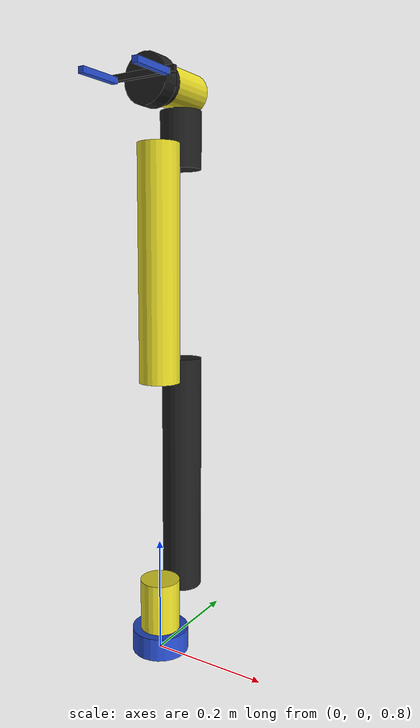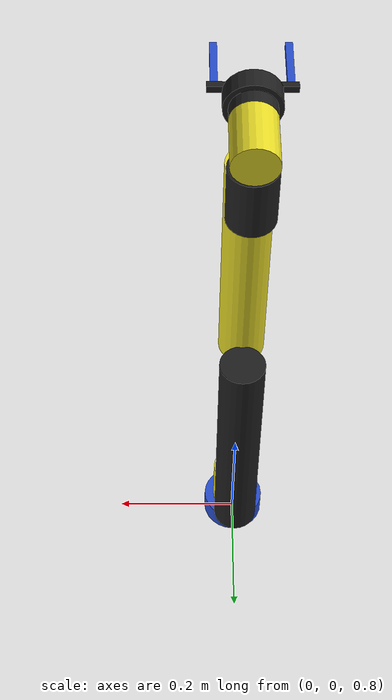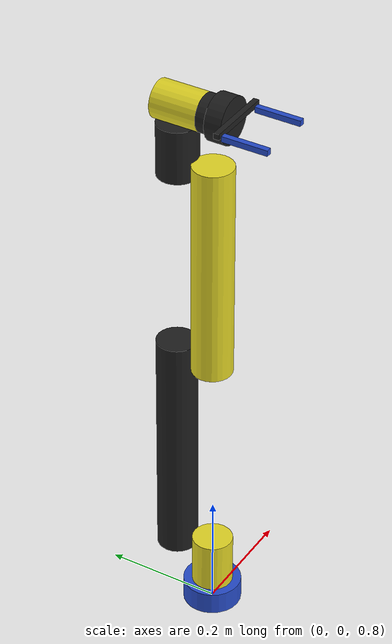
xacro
<?xml version = "1.0"?>

<robot name="custom_robot" xmlns:xacro="http://www.ros.org/wiki/xacro">

    <xacro:include filename="$(find custom_robot_description)/urdf/link_joint.xacro"/>
    <xacro:include filename="$(find custom_robot_description)/urdf/custom_gripper.xacro"/>
    <xacro:include filename="$(find custom_robot_description)/urdf/6_axis_robot_gazebo.xacro"/>

    <link name="world" >
    </link>

    <!-- Create Base Link using xacro -->
    <xacro:cobot_link_cylinder name="base_link" origin_xyz="0.0 0.0 0.02" origin_rpy="0.0 0.0 0.0"
                            radius="0.05" length="0.04" mass="4" i_xx="0.003033" i_xy="0" i_xz="0"
                            i_yy="0.003033" i_yz="0" i_zz="0.005"/>

    <joint name="fixed" type="fixed">
        <parent link="world"/>
        <child link="base_link"/>
        <origin xyz="0 0.0 0.8" rpy="0 0 0"/>
    </joint>

    <!-- Create Link 1 using xacro-->
    <xacro:cobot_link_cylinder name="link_1" origin_xyz="0.0 0.0 0.045" origin_rpy="0.0 0.0 0.0"
                            radius="0.035" length="0.09" mass="3.7" i_xx="0.003630625" i_xy="0" i_xz="0"
                            i_yy="0.003630625" i_yz="0" i_zz="0.00226625" />

    <!-- Create the joint that connects Base Link and Link 1 using xacro-->
    <xacro:cobot_joint name="base_link__link_1" type="revolute" parent="base_link" child="link_1"
                            axis="0 0 1" limit_l="-3.14159" limit_u="3.14159" limit_v="0.5" limit_e="1000.0"
                            origin_xyz="0 0 0.04" origin_rpy="0 0 0" />

    <!-- Create Link 2 using xacro-->
    <xacro:cobot_link_cylinder name="link_2" origin_xyz="0.0 0.0 0.2125" origin_rpy="0.0 0.0 0.0"
                            radius="0.035" length="0.425" mass="8.3" i_xx="0.499729" i_xy="0" i_xz="0"
                            i_yy="0" i_yz="0" i_zz="0.499729" />

    <!-- Create the joint that connects Link 1 and Link 2 using xacro-->
    <xacro:cobot_joint name="link_1__link_2" type="revolute" parent="link_1" child="link_2"
                            axis="0 1 0" limit_l="-3.14159" limit_u="3.14159" limit_v="0.5" limit_e="1000.0"
                            origin_xyz="0 0.07 0.055" origin_rpy="0 0 0" />

    <!-- Create Link 3 using xacro-->
    <xacro:cobot_link_cylinder name="link_3" origin_xyz="0.0 0.0 0.196" origin_rpy="0.0 0.0 0.0"
                            radius="0.035" length="0.392" mass="2.3" i_xx="0.117809067" i_xy="0" i_xz="0"
                            i_yy="0" i_yz="0" i_zz="0.117809067" />

    <!-- Create the joint that connects Link 2 and Link 3 using xacro-->
    <xacro:cobot_joint name="link_2__link_3" type="revolute" parent="link_2" child="link_3"
                            axis="0 1 0" limit_l="-3.14159" limit_u="3.14159" limit_v="0.5" limit_e="1000.0"
                            origin_xyz="0 -0.0675 0.39" origin_rpy="0 0 0" />

    <!-- Create Link 4 using xacro-->
    <xacro:cobot_link_cylinder name="link_4" origin_xyz="0.0 0.0 0.047" origin_rpy="0.0 0.0 0.0"
                            radius="0.035" length="0.094" mass="1.2" i_xx="0.0035344" i_xy="0" i_xz="0"
                            i_yy="0" i_yz="0" i_zz="0.0035344" />

    <!-- Create the joint that connects Link 3 and Link 4 using xacro-->
    <xacro:cobot_joint name="link_3__link_4" type="revolute" parent="link_3" child="link_4"
                            axis="0 1 0" limit_l="-3.14159" limit_u="3.14159" limit_v="0.5" limit_e="1000.0"
                            origin_xyz="0 0.065 0.357" origin_rpy="0 0 0" />

    <!-- Create Link 5 using xacro-->
    <xacro:cobot_link_cylinder name="link_5" origin_xyz="0.0 0.0 0.009" origin_rpy="0.0 0.0 0.0"
                            radius="0.0325" length="0.083" mass="1.2" i_xx="0.0027556" i_xy="0" i_xz="0"
                            i_yy="0" i_yz="0" i_zz="0.0027556" />

    <!-- Create the joint that connects Link 4 and Link 5 using xacro-->
    <xacro:cobot_joint name="link_4__link_5" type="revolute" parent="link_4" child="link_5"
                            axis="0 1 0" limit_l="-3.14159" limit_u="3.14159" limit_v="0.5" limit_e="1000.0"
                            origin_xyz="0 0 0.1265" origin_rpy="1.57 0 0" />

    <!-- Create Link 6 using xacro-->
    <xacro:cobot_link_cylinder name="link_6" origin_xyz="0.0 0.0 0.01" origin_rpy="0.0 0.0 0.0"
                            radius="0.0325" length="0.02" mass="0.2" i_xx="0.000059479" i_xy="0" i_xz="0"
                            i_yy="0.000059479" i_yz="0" i_zz="0.000105625" />

    <!-- Create the joint that connects Link 5 and Link 6 using xacro-->
    <xacro:cobot_joint name="link_5__link_6" type="revolute" parent="link_5" child="link_6"
                            axis="0 0 1" limit_l="-3.14159" limit_u="3.14159" limit_v="0.5" limit_e="1000.0"
                            origin_xyz="0 0 0.0505" origin_rpy="0 0 0" />

    <!-- Create Link 3  -->

    <!-- Create Link 4  -->

    <!-- Create Link 5  -->

    <!-- Create Link 6  -->

    <!-- Attach End Effector -->
    <link name="tool_0">
    </link>

    <joint name="link_6__tool_0" type="fixed">
        <parent link="link_6"/>
        <child link="tool_0"/>
        <origin xyz="0.0 0.0 0.02" rpy="0.0 0.0 0.0"/>
    </joint>

    <link name="picking_point">
    </link>

    <joint name="tool_0_picking_point" type="fixed">
        <parent link="tool_0"/>
        <child link="picking_point"/>
        <origin xyz="0.0 0.0 0.08" rpy="0.0 0.0 0.0"/>
    </joint>

    <xacro:custom_gripper parent="tool_0" origin_xyz="0.0 0.0 0.0"/>

    <!-- Add transmission to each joint (revolute or prismatic)-->
    <xacro:transmission name="trans_base_link__link_1"
                        joint_name="base_link__link_1"
                        actuator_name = "motor_base_link__link_1"/>

    <xacro:transmission name="trans_link_1__link_2"
                        joint_name="link_1__link_2"
                        actuator_name = "motor_link_1__link_2"/>

    <xacro:transmission name="trans_link_2__link_3"
                        joint_name="link_2__link_3"
                        actuator_name = "motor_link_2__link_3"/>

    <xacro:transmission name="trans_link_3__link_4"
                        joint_name="link_3__link_4"
                        actuator_name = "motor_link_3__link_4"/>

    <xacro:transmission name="trans_link_4__link_5"
                        joint_name="link_4__link_5"
                        actuator_name = "motor_link_4__link_5"/>

    <xacro:transmission name="trans_link_5__link_6"
                        joint_name="link_5__link_6"
                        actuator_name = "motor_link_5__link_6"/>

</robot>

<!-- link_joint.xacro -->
<robot xmlns:xacro="http://www.ros.org/wiki/xacro">

    <xacro:macro name="cobot_link_cylinder" params="name origin_xyz origin_rpy radius length mass i_xx i_xy i_xz i_yy i_yz i_zz">
        <link name="${name}">
            <inertial>
                <origin xyz="${origin_xyz}" rpy="${origin_rpy}"/>
                <mass value="${mass}"/>
                <inertia ixx="${i_xx}" ixy="${i_xy}" ixz="${i_xz}" iyy="${i_yy}" iyz="${i_yz}" izz="${i_zz}"/>
            </inertial>
            <visual>
                <geometry>
                    <cylinder radius="${radius}" length="${length}"/>
                </geometry>
                <origin xyz="${origin_xyz}" rpy="${origin_rpy}"/>
            </visual>

            <collision>
                <geometry>
                    <cylinder radius="${radius}" length="${length}"/>
                </geometry>
                <origin xyz="${origin_xyz}" rpy="${origin_rpy}"/>
            </collision>
        </link>
    </xacro:macro>

    <xacro:macro name="cobot_link_box" params="name origin_xyz origin_rpy size mass i_xx i_xy i_xz i_yy i_yz i_zz">
        <link name="${name}">
            <inertial>
                <origin xyz="${origin_xyz}" rpy="${origin_rpy}"/>
                <mass value="${mass}"/>
                <inertia ixx="${i_xx}" ixy="${i_xy}" ixz="${i_xz}" iyy="${i_yy}" iyz="${i_yz}" izz="${i_zz}"/>
            </inertial>
            <visual>
                <geometry>
                    <box size="${size}"/>
                </geometry>
                <origin xyz="${origin_xyz}" rpy="${origin_rpy}"/>
            </visual>

            <collision>
                <geometry>
                    <box size="${size}"/>
                </geometry>
                <origin xyz="${origin_xyz}" rpy="${origin_rpy}"/>
            </collision>
        </link>
    </xacro:macro>

    <xacro:macro name="cobot_joint" params="name type parent child axis limit_l limit_u limit_v limit_e origin_xyz origin_rpy">
        <joint name="${name}" type="${type}">
            <parent link="${parent}"/>
            <child link="${child}"/>
            <axis xyz="${axis}"/>
            <limit lower="${limit_l}" upper="${limit_u}" velocity="${limit_v}" effort="${limit_e}"/>
            <origin xyz="${origin_xyz}" rpy="${origin_rpy}"/>
        </joint>
    </xacro:macro>

    <xacro:macro name="transmission" params="name joint_name actuator_name">
        <transmission name="${name}" >
            <type>transmission_interface/SimpleTransmission</type>
            <joint name= "${joint_name}" >
                <hardwareInterface>hardware_interface/EffortJointInterface</hardwareInterface>
            </joint>
            <actuator name= "${actuator_name}" >
                <hardwareInterface>hardware_interface/EffortJointInterface</hardwareInterface>
                <mechanicalReduction>1</mechanicalReduction>
            </actuator>
        </transmission>
    </xacro:macro>

</robot>

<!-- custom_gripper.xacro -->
<robot xmlns:xacro="http://www.ros.org/wiki/xacro">

    <xacro:include filename="$(find custom_robot_description)/urdf/link_joint.xacro"/>

    <!-- Model a gripper -->
    <xacro:macro name="custom_gripper" params="parent origin_xyz">

        <xacro:cobot_link_cylinder name="gripper_connector" origin_xyz="0.0 0.0 0.015" origin_rpy="0.0 0.0 0.0"
                                    radius="0.04" length="0.03" mass="0.5" i_xx="0.0002375" i_xy="0" i_xz="0" i_yy="0.0002375" i_yz="0" i_zz="0.00006666666667"/>

        <joint name="{parent}_gripper_connector" type="fixed">
            <parent link="${parent}"/>
            <child link="gripper_connector"/>
            <origin xyz="${origin_xyz}" rpy="0.0 0.0 0.0"/>
        </joint>

        <xacro:cobot_link_box name="finger_support" origin_xyz="0.0 0.005 0.005" origin_rpy="0.0 0.0 0.0"
                                    size="0.120 0.01 0.01" mass="0.25" i_xx="0.0003" i_xy="0" i_xz="0" i_yy="0" i_yz="0" i_zz="0.0003"/>

        <joint name="finger_support_gripper_connector" type="fixed">
            <parent link="gripper_connector"/>
            <child link="finger_support"/>
            <origin xyz="0 0 0.03" rpy="0.0 0.0 0.0"/>
        </joint>

        <xacro:cobot_link_box name="finger_right" origin_xyz="0.0 0.0 0.04" origin_rpy="0.0 0.0 0.0"
                                    size="0.01 0.01 0.08" mass="0.2" i_xx="0.00042667" i_xy="0" i_xz="0"
                                    i_yy="0.00042667" i_yz="0" i_zz="0.0000083"/>

        <xacro:cobot_link_box name="finger_left" origin_xyz="0.0 0.0 0.04" origin_rpy="0.0 0.0 0.0"
                                    size="0.01 0.01 0.08" mass="0.2" i_xx="0.00042667" i_xy="0" i_xz="0"
                                    i_yy="0.00042667" i_yz="0" i_zz="0.0000083"/>

        <joint name="finger_right_joint" type="prismatic">
            <parent link="finger_support"/>
            <child link="finger_right"/>
            <axis xyz="1 0 0"/>
            <limit lower="0" upper="0.044" velocity="0.5" effort="200"/>
            <origin xyz="-0.05 0.0 0.011" rpy="0 0 0"/>
            <dynamics damping="1" friction="2"/>
        </joint>

        <xacro:transmission name="trans_finger_right_joint"
                        joint_name="finger_right_joint"
                        actuator_name="motor_finger_right_joint" />

        <joint name="finger_left_joint" type="prismatic">
            <parent link="finger_support"/>
            <child link="finger_left"/>
            <axis xyz="1 0 0"/>
            <limit lower="-0.044" upper="0" velocity="0.5" effort="200"/>
            <origin xyz="0.05 0.0 0.011" rpy="0 0 0"/>
            <dynamics damping="1" friction="2"/>
            <mimic joint="finger_right_joint" multiplier="-1.0" offset="0" />
        </joint>

        <xacro:transmission name="trans_finger_left_joint"
                        joint_name="finger_left_joint"
                        actuator_name="motor_finger_left_joint" />

        <xacro:mimic_joint_plugin_gazebo  parent_joint="finger_right_joint" mimic_joint="finger_left_joint"
                                            has_pid="false" multiplier="-1.0" max_effort="200" />

    </xacro:macro>

</robot>
